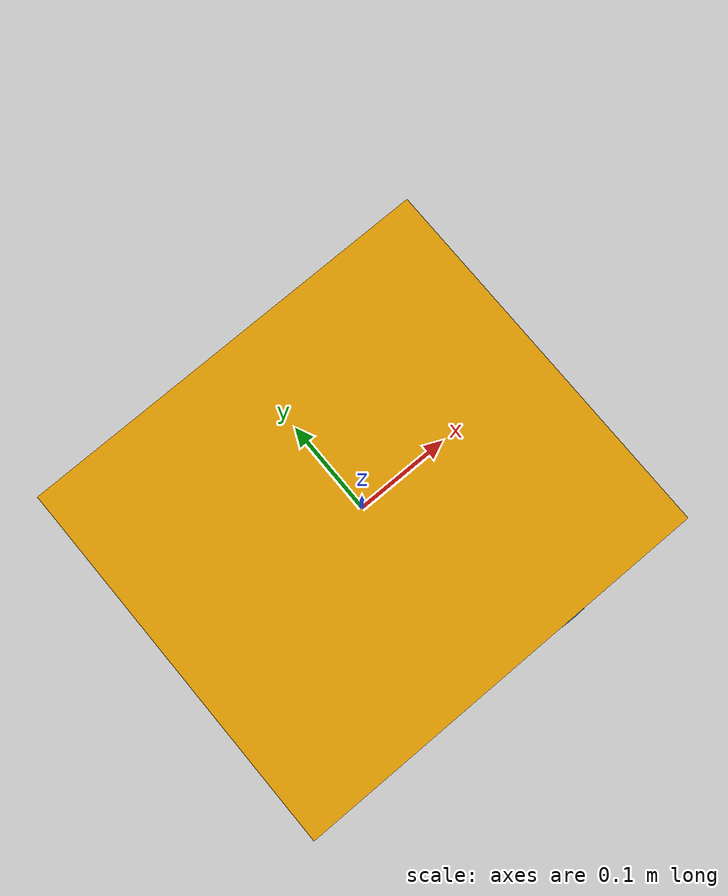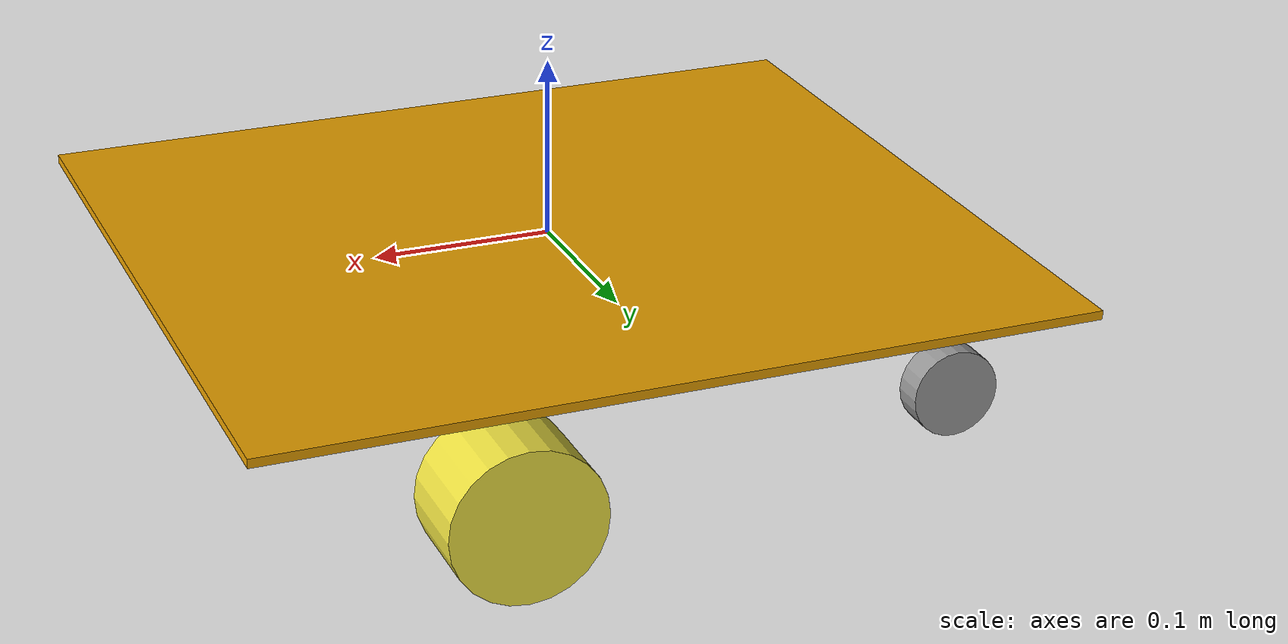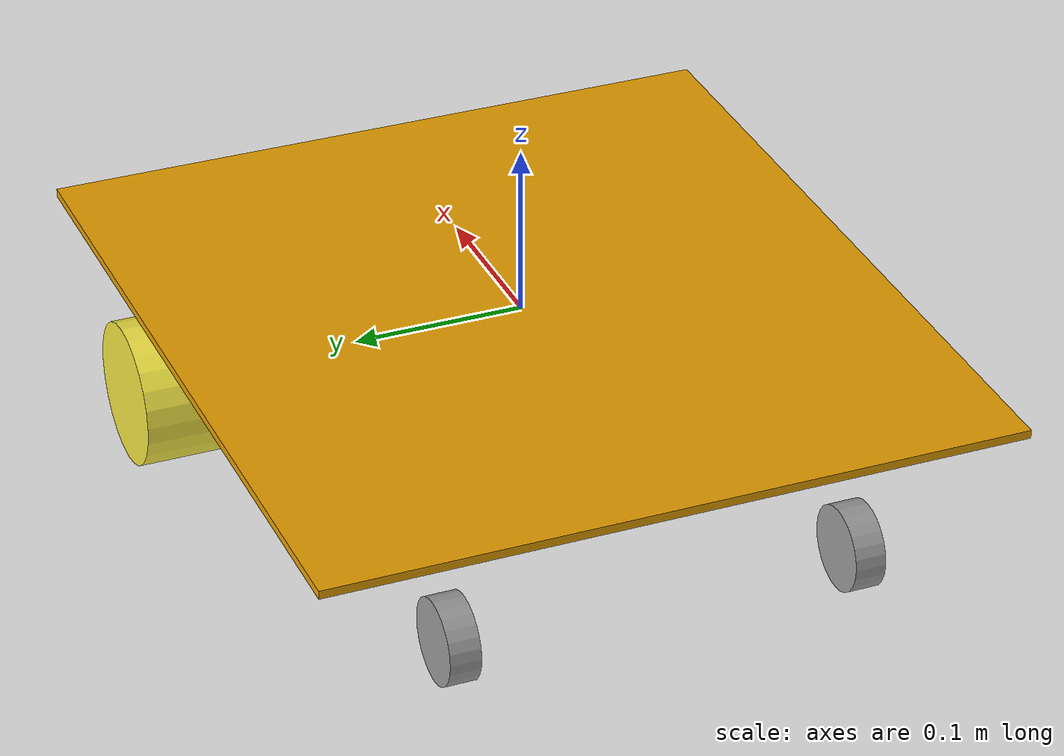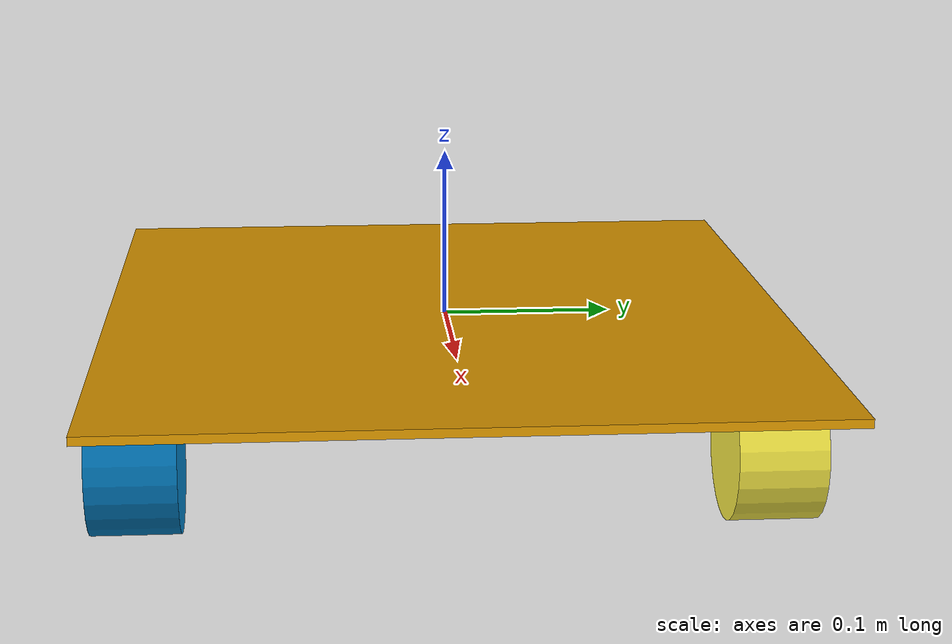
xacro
<?xml version="1.0"?>
<robot xmlns:xacro="http://www.ros.org/wiki/xacro" name="model">
     <!-- base properties -->
     <xacro:property name="base_length" value="0.458" />
     <xacro:property name="base_width" value="0.41" />
     <xacro:property name="base_height" value="0.005" />
     <xacro:property name="base_mass" value="0.2" />
     <!-- metal frame properties -->
     <xacro:property name="frame_length" value="0.365" />
     <xacro:property name="frame_width" value="0.305" />
     <xacro:property name="frame_height" value="0.03" />
     <xacro:property name="frame_mass" value="0.2" />

     <!-- wheel properties -->
     <xacro:property name="wheel_xoffset" value="0.09" />
     <xacro:property name="wheel_yoffset" value="0.18375" />
     <xacro:property name="wheel_zoffset" value="-0.06" />
     <xacro:property name="wheel_radius" value="0.0425" />
     <xacro:property name="wheel_width" value="0.052" />
     <xacro:property name="wheel_mass" value="0.032" />
     <!-- caster properties -->
     <xacro:property name="caster_xoffset" value="-0.190" />
     <xacro:property name="caster1_yoffset" value="-0.119" />
     <xacro:property name="caster2_yoffset" value="0.119" />
     <xacro:property name="caster_zoffset" value="-0.0745" />
     <xacro:property name="caster_radius" value="0.025" />
     <xacro:property name="caster_width" value="0.018" />
     <xacro:property name="caster_mass" value="0.016" />

    <!-- Define wheel template -->
    <xacro:macro name="wheel" params="prefix y_reflect">
        <joint name="${prefix}_joint" type="continuous">
            <parent link="base_link" />
            <child link="${prefix}_link" />
            <origin xyz="${wheel_xoffset} ${y_reflect*wheel_yoffset} ${wheel_zoffset}" rpy="${-pi/2} 0 0" />
            <axis xyz="0 0 1" />
        </joint>

        <link name="${prefix}_link">
            <visual>
                <geometry>
                    <cylinder radius="${wheel_radius}" length="${wheel_width}"/>
                </geometry>
            </visual>

            <collision>
                <geometry>
                    <cylinder radius="${wheel_radius}" length="${wheel_width}"/>
                </geometry>
            </collision>

            <inertial>
                <origin xyz="0 0 0" rpy="${pi/2} 0 0" />
                <mass value="${wheel_mass}" />
                <inertia ixx="${(wheel_mass/12) * (3*wheel_radius*wheel_radius + wheel_width*wheel_width)}" ixy="0" ixz="0" iyy="${(wheel_mass/12) * (3*wheel_radius*wheel_radius + wheel_width*wheel_width)}" iyz="0" izz="${(wheel_mass/2) * (wheel_radius*wheel_radius)}" />
            </inertial>
        </link>

    </xacro:macro>

    <link name="base_link">
        <visual>
            <geometry>
                <box size="${base_length} ${base_width} ${base_height}"/>
            </geometry>
        </visual>
        <inertial>
            <origin xyz="0 0 0" rpy="${pi/2} 0 ${pi/2}" />
            <mass value="${base_mass}" />
            <inertia ixx="${(base_mass/12) * (base_height*base_height + base_width*base_width)}" ixy="0.0" ixz="0.0" iyy="${(base_mass/12) * (base_length*base_length + base_height*base_height)}" iyz="0.0" izz="${(base_mass/12) * (base_width*base_width + base_length*base_length)}" />
        </inertial>
        <collision>
            <geometry>
                <box size="${base_length} ${base_width} ${base_height}"/>
            </geometry>
        </collision>
    </link>

    <!-- CASTER WHEEL -->
    <link name="caster1">
        <visual>
            <geometry>
                <cylinder radius="${caster_radius}" length="${caster_width}" />
            </geometry>
        </visual>

        <collision>
            <geometry>
                <cylinder radius="${caster_radius}" length="${caster_width}" />
            </geometry>
        </collision>

        <inertial>
            <origin xyz="0 0 0" rpy="${pi/2} 0 ${pi/2}" />
            <mass value="${caster_mass}" />
            <inertia ixx="0.01" ixy="0" ixz="0" iyy="0.01" iyz="0" izz="0.01" />
        </inertial>
    </link>

    <link name="caster2">
        <visual>
            <geometry>
                <cylinder radius="${caster_radius}" length="${caster_width}" />
            </geometry>
        </visual>

        <collision>
            <geometry>
                <cylinder radius="${caster_radius}" length="${caster_width}" />
            </geometry>
        </collision>

        <inertial>
            <origin xyz="0 0 0" rpy="${pi/2} 0 ${pi/2}" />
            <mass value="${caster_mass}" />
            <inertia ixx="0.01" ixy="0" ixz="0" iyy="0.01" iyz="0" izz="0.01" />
        </inertial>
    </link>

    <joint name="movement_joint0" type="fixed">
        <parent link="base_link" />
        <child link="caster1" />
        <origin xyz="${caster_xoffset} ${caster1_yoffset} ${caster_zoffset}" rpy="${pi/2} 0 0"/>
    </joint>

    <joint name="movement_joint1" type="fixed">
        <parent link="base_link" />
        <child link="caster2" />
        <origin xyz="${caster_xoffset} ${caster2_yoffset} ${caster_zoffset}" rpy="${pi/2} 0 0"/>
    </joint>

    <gazebo reference="caster1">
        <mu1>0</mu1>
        <mu2>0</mu2>
        <material>Gazebo/Gray</material>
    </gazebo>

    <gazebo reference="caster2">
        <mu1>0</mu1>
        <mu2>0</mu2>
        <material>Gazebo/Gray</material>
    </gazebo>

    <!-- LEFT AND RIGHT WHEEL -->
    <xacro:wheel prefix="left_wheel" y_reflect="1" />
    <xacro:wheel prefix="right_wheel" y_reflect="-1" />

    <gazebo>
        <plugin name='diff_drive' filename='libgazebo_ros_diff_drive.so'>
            <!-- Replace camelCase elements with camel_case ones -->
            <update_rate>50</update_rate>
            <left_joint>left_wheel_joint</left_joint>
            <right_joint>right_wheel_joint</right_joint>

            <wheel_separation>0.3675</wheel_separation>
            <wheel_diameter>0.085</wheel_diameter>

            <publish_odom>true</publish_odom>
            <publish_odom_tf>true</publish_odom_tf>
            <publish_wheel_tf>true</publish_wheel_tf>
            <odometry_frame>odom</odometry_frame>
            <robot_base_frame>base_link</robot_base_frame>

            <!-- wheelTorque and wheelAcceleration now have max_ prefix -->
            <max_wheel_torque>20</max_wheel_torque>
            <max_acceleration>1.0</max_acceleration>

        </plugin>

        <plugin name="joint_states" filename="libgazebo_ros_joint_state_publisher.so">
            <joint_name>right_wheel_joint</joint_name>
            <joint_name>left_wheel_joint</joint_name>
        </plugin>
    </gazebo>
    <link name = "base_footprint">

    </link>

    <joint name = "ee" type = "fixed">
        <parent link = "base_link"/>
         <child link = "base_footprint"/>
        <origin xyz = "0 0 -0.0425"/>
    </joint>

    <link name = "lidar_link">

    </link>
    <joint name = "ii" type = "fixed">
        <parent link = "base_link"/>
        <child link = "lidar_link"/>
        <origin xyz = "0 0 0.02"/>
    </joint>

    <gazebo reference="lidar_link">
        <material>Gazebo/Black</material>
        <sensor name="lidar" type="ray">
            <always_on>true</always_on>
            <visualize>true</visualize>
            <update_rate>10</update_rate>
            <ray>
                <scan>
                    <horizontal>
                        <samples>360</samples>
                        <resolution>1.000000</resolution>
                        <min_angle>0.000000</min_angle>
                        <max_angle>6.280000</max_angle>
                    </horizontal>
                </scan>
                <range>
                    <min>0.120000</min>
                    <max>6</max>
                    <resolution>0.015000</resolution>
                </range>
                <noise>
                    <type>gaussian</type>
                    <mean>0.0</mean>
                    <stddev>0.01</stddev>
                </noise>
            </ray>
            <plugin name="scan" filename="libgazebo_ros_ray_sensor.so">
                <ros>
                    <remapping>~/out:=scan</remapping>
                </ros>
                <output_type>sensor_msgs/LaserScan</output_type>
            </plugin>
        </sensor>
    </gazebo>
</robot>
